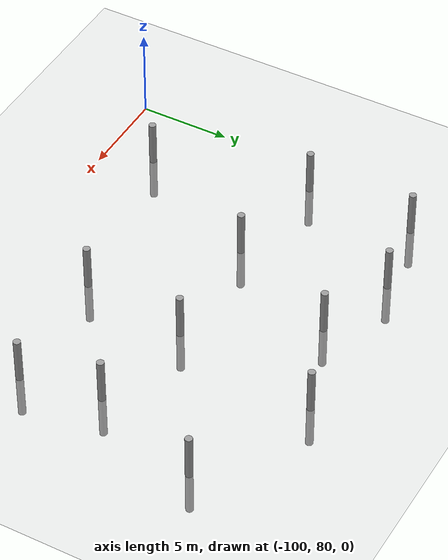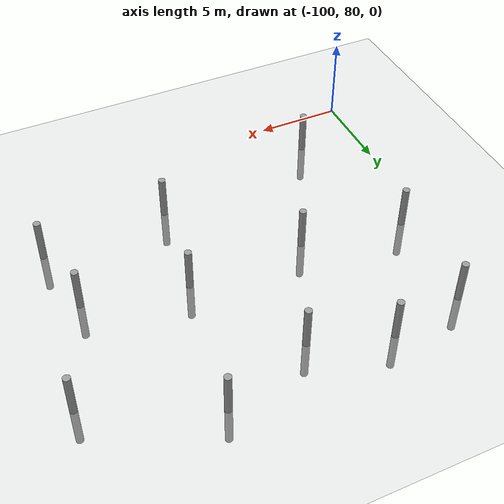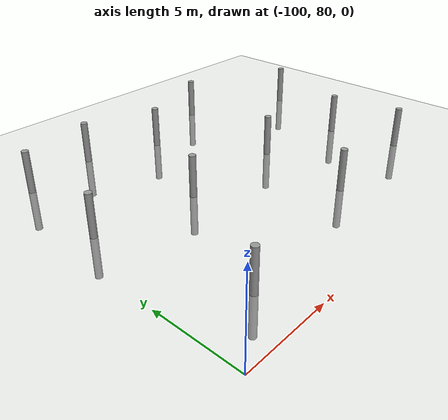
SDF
<sdf version="1.6">
 <world name="default">
  <model name="ground_plane">
   <static>1</static>
   <link name="link">
    <collision name="collision">
     <geometry><plane><normal>0 0 1</normal><size>100 100</size></plane></geometry>
     <surface><friction><ode><mu>100</mu><mu2>50</mu2></ode></friction></surface>
    </collision>
    <visual name="visual">
     <cast_shadows>0</cast_shadows>
     <geometry><plane><normal>0 0 1</normal><size>100 100</size></plane></geometry>
     <material>
      <script><uri>file://media/materials/scripts/gazebo.material</uri><name>Gazebo/Grey</name></script>
     </material>
    </visual>
   </link>
  </model>
  <model name="empty_pillars">
   <model name="empty_pillar_clone_16">
    <link name="link">
     <inertial>
      <mass>1</mass>
      <inertia><ixx>0.145833</ixx><ixy>0</ixy><ixz>0</ixz><iyy>0.145833</iyy><iyz>0</iyz><izz>0.125</izz></inertia>
     </inertial>
     <visual name="visual">
      <geometry><cylinder><radius>0.2</radius><length>5</length></cylinder></geometry>
      <material>
       <script><name>Gazebo/Grey</name><uri>file://media/materials/scripts/gazebo.material</uri></script>
       <shader type="vertex"><normal_map>__default__</normal_map></shader>
       <ambient>0.3 0.3 0.3 1</ambient>
       <diffuse>0.7 0.7 0.7 1</diffuse>
       <specular>0.01 0.01 0.01 1</specular>
       <emissive>0 0 0 1</emissive>
      </material>
     </visual>
     <collision name="collision">
      <geometry><cylinder><radius>0.05</radius><length>5</length></cylinder></geometry>
      <surface>
       <friction>
        <ode><mu>1</mu><mu2>1</mu2><fdir1>0 0 0</fdir1><slip1>0</slip1><slip2>0</slip2></ode>
        <torsional>
         <coefficient>1</coefficient>
         <patch_radius>0</patch_radius>
         <surface_radius>0</surface_radius>
         <use_patch_radius>1</use_patch_radius>
         <ode><slip>0</slip></ode>
        </torsional>
       </friction>
       <bounce><restitution_coefficient>0</restitution_coefficient><threshold>1e+06</threshold></bounce>
       <contact>
        <collide_without_contact>0</collide_without_contact>
        <collide_without_contact_bitmask>1</collide_without_contact_bitmask>
        <collide_bitmask>1</collide_bitmask>
        <ode>
         <soft_cfm>0</soft_cfm>
         <soft_erp>0.2</soft_erp>
         <kp>1e+13</kp>
         <kd>1</kd>
         <max_vel>0.01</max_vel>
         <min_depth>0</min_depth>
        </ode>
        <bullet>
         <split_impulse>1</split_impulse>
         <split_impulse_penetration_threshold>-0.01</split_impulse_penetration_threshold>
         <soft_cfm>0</soft_cfm>
         <soft_erp>0.2</soft_erp>
         <kp>1e+13</kp>
         <kd>1</kd>
        </bullet>
       </contact>
      </surface>
     </collision>
    </link>
    <static>0</static>
    <pose>-9.20789 13.0504 0 0 -0 0</pose>
   </model>
   <model name="empty_pillar_clone_17">
    <link name="link">
     <inertial>
      <mass>1</mass>
      <inertia><ixx>0.145833</ixx><ixy>0</ixy><ixz>0</ixz><iyy>0.145833</iyy><iyz>0</iyz><izz>0.125</izz></inertia>
     </inertial>
     <visual name="visual">
      <geometry><cylinder><radius>0.2</radius><length>5</length></cylinder></geometry>
      <material>
       <script><name>Gazebo/Grey</name><uri>file://media/materials/scripts/gazebo.material</uri></script>
       <shader type="vertex"><normal_map>__default__</normal_map></shader>
       <ambient>0.3 0.3 0.3 1</ambient>
       <diffuse>0.7 0.7 0.7 1</diffuse>
       <specular>0.01 0.01 0.01 1</specular>
       <emissive>0 0 0 1</emissive>
      </material>
     </visual>
     <collision name="collision">
      <geometry><cylinder><radius>0.05</radius><length>5</length></cylinder></geometry>
      <surface>
       <friction>
        <ode><mu>1</mu><mu2>1</mu2><fdir1>0 0 0</fdir1><slip1>0</slip1><slip2>0</slip2></ode>
        <torsional>
         <coefficient>1</coefficient>
         <patch_radius>0</patch_radius>
         <surface_radius>0</surface_radius>
         <use_patch_radius>1</use_patch_radius>
         <ode><slip>0</slip></ode>
        </torsional>
       </friction>
       <bounce><restitution_coefficient>0</restitution_coefficient><threshold>1e+06</threshold></bounce>
       <contact>
        <collide_without_contact>0</collide_without_contact>
        <collide_without_contact_bitmask>1</collide_without_contact_bitmask>
        <collide_bitmask>1</collide_bitmask>
        <ode>
         <soft_cfm>0</soft_cfm>
         <soft_erp>0.2</soft_erp>
         <kp>1e+13</kp>
         <kd>1</kd>
         <max_vel>0.01</max_vel>
         <min_depth>0</min_depth>
        </ode>
        <bullet>
         <split_impulse>1</split_impulse>
         <split_impulse_penetration_threshold>-0.01</split_impulse_penetration_threshold>
         <soft_cfm>0</soft_cfm>
         <soft_erp>0.2</soft_erp>
         <kp>1e+13</kp>
         <kd>1</kd>
        </bullet>
       </contact>
      </surface>
     </collision>
    </link>
    <static>0</static>
    <pose>-16.0449 12.755 0 0 -0 0</pose>
   </model>
   <model name="empty_pillar_clone_18">
    <link name="link">
     <inertial>
      <mass>1</mass>
      <inertia><ixx>0.145833</ixx><ixy>0</ixy><ixz>0</ixz><iyy>0.145833</iyy><iyz>0</iyz><izz>0.125</izz></inertia>
     </inertial>
     <visual name="visual">
      <geometry><cylinder><radius>0.2</radius><length>5</length></cylinder></geometry>
      <material>
       <script><name>Gazebo/Grey</name><uri>file://media/materials/scripts/gazebo.material</uri></script>
       <shader type="vertex"><normal_map>__default__</normal_map></shader>
       <ambient>0.3 0.3 0.3 1</ambient>
       <diffuse>0.7 0.7 0.7 1</diffuse>
       <specular>0.01 0.01 0.01 1</specular>
       <emissive>0 0 0 1</emissive>
      </material>
     </visual>
     <collision name="collision">
      <geometry><cylinder><radius>0.05</radius><length>5</length></cylinder></geometry>
      <surface>
       <friction>
        <ode><mu>1</mu><mu2>1</mu2><fdir1>0 0 0</fdir1><slip1>0</slip1><slip2>0</slip2></ode>
        <torsional>
         <coefficient>1</coefficient>
         <patch_radius>0</patch_radius>
         <surface_radius>0</surface_radius>
         <use_patch_radius>1</use_patch_radius>
         <ode><slip>0</slip></ode>
        </torsional>
       </friction>
       <bounce><restitution_coefficient>0</restitution_coefficient><threshold>1e+06</threshold></bounce>
       <contact>
        <collide_without_contact>0</collide_without_contact>
        <collide_without_contact_bitmask>1</collide_without_contact_bitmask>
        <collide_bitmask>1</collide_bitmask>
        <ode>
         <soft_cfm>0</soft_cfm>
         <soft_erp>0.2</soft_erp>
         <kp>1e+13</kp>
         <kd>1</kd>
         <max_vel>0.01</max_vel>
         <min_depth>0</min_depth>
        </ode>
        <bullet>
         <split_impulse>1</split_impulse>
         <split_impulse_penetration_threshold>-0.01</split_impulse_penetration_threshold>
         <soft_cfm>0</soft_cfm>
         <soft_erp>0.2</soft_erp>
         <kp>1e+13</kp>
         <kd>1</kd>
        </bullet>
       </contact>
      </surface>
     </collision>
    </link>
    <static>0</static>
    <pose>-20.0146 5.15966 0 0 -0 0</pose>
   </model>
   <model name="empty_pillar_clone_19">
    <link name="link">
     <inertial>
      <mass>1</mass>
      <inertia><ixx>0.145833</ixx><ixy>0</ixy><ixz>0</ixz><iyy>0.145833</iyy><iyz>0</iyz><izz>0.125</izz></inertia>
     </inertial>
     <visual name="visual">
      <geometry><cylinder><radius>0.2</radius><length>5</length></cylinder></geometry>
      <material>
       <script><name>Gazebo/Grey</name><uri>file://media/materials/scripts/gazebo.material</uri></script>
       <shader type="vertex"><normal_map>__default__</normal_map></shader>
       <ambient>0.3 0.3 0.3 1</ambient>
       <diffuse>0.7 0.7 0.7 1</diffuse>
       <specular>0.01 0.01 0.01 1</specular>
       <emissive>0 0 0 1</emissive>
      </material>
     </visual>
     <collision name="collision">
      <geometry><cylinder><radius>0.05</radius><length>5</length></cylinder></geometry>
      <surface>
       <friction>
        <ode><mu>1</mu><mu2>1</mu2><fdir1>0 0 0</fdir1><slip1>0</slip1><slip2>0</slip2></ode>
        <torsional>
         <coefficient>1</coefficient>
         <patch_radius>0</patch_radius>
         <surface_radius>0</surface_radius>
         <use_patch_radius>1</use_patch_radius>
         <ode><slip>0</slip></ode>
        </torsional>
       </friction>
       <bounce><restitution_coefficient>0</restitution_coefficient><threshold>1e+06</threshold></bounce>
       <contact>
        <collide_without_contact>0</collide_without_contact>
        <collide_without_contact_bitmask>1</collide_without_contact_bitmask>
        <collide_bitmask>1</collide_bitmask>
        <ode>
         <soft_cfm>0</soft_cfm>
         <soft_erp>0.2</soft_erp>
         <kp>1e+13</kp>
         <kd>1</kd>
         <max_vel>0.01</max_vel>
         <min_depth>0</min_depth>
        </ode>
        <bullet>
         <split_impulse>1</split_impulse>
         <split_impulse_penetration_threshold>-0.01</split_impulse_penetration_threshold>
         <soft_cfm>0</soft_cfm>
         <soft_erp>0.2</soft_erp>
         <kp>1e+13</kp>
         <kd>1</kd>
        </bullet>
       </contact>
      </surface>
     </collision>
    </link>
    <static>0</static>
    <pose>-10.0146 7.15966 0 0 -0 0</pose>
   </model>
   <model name="empty_pillar_clone_20">
    <link name="link">
     <inertial>
      <mass>1</mass>
      <inertia><ixx>0.145833</ixx><ixy>0</ixy><ixz>0</ixz><iyy>0.145833</iyy><iyz>0</iyz><izz>0.125</izz></inertia>
     </inertial>
     <visual name="visual">
      <geometry><cylinder><radius>0.2</radius><length>5</length></cylinder></geometry>
      <material>
       <script><name>Gazebo/Grey</name><uri>file://media/materials/scripts/gazebo.material</uri></script>
       <shader type="vertex"><normal_map>__default__</normal_map></shader>
       <ambient>0.3 0.3 0.3 1</ambient>
       <diffuse>0.7 0.7 0.7 1</diffuse>
       <specular>0.01 0.01 0.01 1</specular>
       <emissive>0 0 0 1</emissive>
      </material>
     </visual>
     <collision name="collision">
      <geometry><cylinder><radius>0.05</radius><length>5</length></cylinder></geometry>
      <surface>
       <friction>
        <ode><mu>1</mu><mu2>1</mu2><fdir1>0 0 0</fdir1><slip1>0</slip1><slip2>0</slip2></ode>
        <torsional>
         <coefficient>1</coefficient>
         <patch_radius>0</patch_radius>
         <surface_radius>0</surface_radius>
         <use_patch_radius>1</use_patch_radius>
         <ode><slip>0</slip></ode>
        </torsional>
       </friction>
       <bounce><restitution_coefficient>0</restitution_coefficient><threshold>1e+06</threshold></bounce>
       <contact>
        <collide_without_contact>0</collide_without_contact>
        <collide_without_contact_bitmask>1</collide_without_contact_bitmask>
        <collide_bitmask>1</collide_bitmask>
        <ode>
         <soft_cfm>0</soft_cfm>
         <soft_erp>0.2</soft_erp>
         <kp>1e+13</kp>
         <kd>1</kd>
         <max_vel>0.01</max_vel>
         <min_depth>0</min_depth>
        </ode>
        <bullet>
         <split_impulse>1</split_impulse>
         <split_impulse_penetration_threshold>-0.01</split_impulse_penetration_threshold>
         <soft_cfm>0</soft_cfm>
         <soft_erp>0.2</soft_erp>
         <kp>1e+13</kp>
         <kd>1</kd>
        </bullet>
       </contact>
      </surface>
     </collision>
    </link>
    <static>0</static>
    <pose>-13.0146 19.1597 0 0 -0 0</pose>
   </model>
   <model name="empty_pillar_clone_21">
    <link name="link">
     <inertial>
      <mass>1</mass>
      <inertia><ixx>0.145833</ixx><ixy>0</ixy><ixz>0</ixz><iyy>0.145833</iyy><iyz>0</iyz><izz>0.125</izz></inertia>
     </inertial>
     <visual name="visual">
      <geometry><cylinder><radius>0.2</radius><length>5</length></cylinder></geometry>
      <material>
       <script><name>Gazebo/Grey</name><uri>file://media/materials/scripts/gazebo.material</uri></script>
       <shader type="vertex"><normal_map>__default__</normal_map></shader>
       <ambient>0.3 0.3 0.3 1</ambient>
       <diffuse>0.7 0.7 0.7 1</diffuse>
       <specular>0.01 0.01 0.01 1</specular>
       <emissive>0 0 0 1</emissive>
      </material>
     </visual>
     <collision name="collision">
      <geometry><cylinder><radius>0.05</radius><length>5</length></cylinder></geometry>
      <surface>
       <friction>
        <ode><mu>1</mu><mu2>1</mu2><fdir1>0 0 0</fdir1><slip1>0</slip1><slip2>0</slip2></ode>
        <torsional>
         <coefficient>1</coefficient>
         <patch_radius>0</patch_radius>
         <surface_radius>0</surface_radius>
         <use_patch_radius>1</use_patch_radius>
         <ode><slip>0</slip></ode>
        </torsional>
       </friction>
       <bounce><restitution_coefficient>0</restitution_coefficient><threshold>1e+06</threshold></bounce>
       <contact>
        <collide_without_contact>0</collide_without_contact>
        <collide_without_contact_bitmask>1</collide_without_contact_bitmask>
        <collide_bitmask>1</collide_bitmask>
        <ode>
         <soft_cfm>0</soft_cfm>
         <soft_erp>0.2</soft_erp>
         <kp>1e+13</kp>
         <kd>1</kd>
         <max_vel>0.01</max_vel>
         <min_depth>0</min_depth>
        </ode>
        <bullet>
         <split_impulse>1</split_impulse>
         <split_impulse_penetration_threshold>-0.01</split_impulse_penetration_threshold>
         <soft_cfm>0</soft_cfm>
         <soft_erp>0.2</soft_erp>
         <kp>1e+13</kp>
         <kd>1</kd>
        </bullet>
       </contact>
      </surface>
     </collision>
    </link>
    <static>0</static>
    <pose>-21.7273 19.7662 0 0 -0 0</pose>
   </model>
   <model name="empty_pillar_clone_22">
    <link name="link">
     <inertial>
      <mass>1</mass>
      <inertia><ixx>0.145833</ixx><ixy>0</ixy><ixz>0</ixz><iyy>0.145833</iyy><iyz>0</iyz><izz>0.125</izz></inertia>
     </inertial>
     <visual name="visual">
      <geometry><cylinder><radius>0.2</radius><length>5</length></cylinder></geometry>
      <material>
       <script><name>Gazebo/Grey</name><uri>file://media/materials/scripts/gazebo.material</uri></script>
       <shader type="vertex"><normal_map>__default__</normal_map></shader>
       <ambient>0.3 0.3 0.3 1</ambient>
       <diffuse>0.7 0.7 0.7 1</diffuse>
       <specular>0.01 0.01 0.01 1</specular>
       <emissive>0 0 0 1</emissive>
      </material>
     </visual>
     <collision name="collision">
      <geometry><cylinder><radius>0.05</radius><length>5</length></cylinder></geometry>
      <surface>
       <friction>
        <ode><mu>1</mu><mu2>1</mu2><fdir1>0 0 0</fdir1><slip1>0</slip1><slip2>0</slip2></ode>
        <torsional>
         <coefficient>1</coefficient>
         <patch_radius>0</patch_radius>
         <surface_radius>0</surface_radius>
         <use_patch_radius>1</use_patch_radius>
         <ode><slip>0</slip></ode>
        </torsional>
       </friction>
       <bounce><restitution_coefficient>0</restitution_coefficient><threshold>1e+06</threshold></bounce>
       <contact>
        <collide_without_contact>0</collide_without_contact>
        <collide_without_contact_bitmask>1</collide_without_contact_bitmask>
        <collide_bitmask>1</collide_bitmask>
        <ode>
         <soft_cfm>0</soft_cfm>
         <soft_erp>0.2</soft_erp>
         <kp>1e+13</kp>
         <kd>1</kd>
         <max_vel>0.01</max_vel>
         <min_depth>0</min_depth>
        </ode>
        <bullet>
         <split_impulse>1</split_impulse>
         <split_impulse_penetration_threshold>-0.01</split_impulse_penetration_threshold>
         <soft_cfm>0</soft_cfm>
         <soft_erp>0.2</soft_erp>
         <kp>1e+13</kp>
         <kd>1</kd>
        </bullet>
       </contact>
      </surface>
     </collision>
    </link>
    <static>0</static>
    <pose>-17.3667 20.5782 0 0 -0 0</pose>
   </model>
   <model name="empty_pillar_clone_23">
    <link name="link">
     <inertial>
      <mass>1</mass>
      <inertia><ixx>0.145833</ixx><ixy>0</ixy><ixz>0</ixz><iyy>0.145833</iyy><iyz>0</iyz><izz>0.125</izz></inertia>
     </inertial>
     <visual name="visual">
      <geometry><cylinder><radius>0.2</radius><length>5</length></cylinder></geometry>
      <material>
       <script><name>Gazebo/Grey</name><uri>file://media/materials/scripts/gazebo.material</uri></script>
       <shader type="vertex"><normal_map>__default__</normal_map></shader>
       <ambient>0.3 0.3 0.3 1</ambient>
       <diffuse>0.7 0.7 0.7 1</diffuse>
       <specular>0.01 0.01 0.01 1</specular>
       <emissive>0 0 0 1</emissive>
      </material>
     </visual>
     <collision name="collision">
      <geometry><cylinder><radius>0.05</radius><length>5</length></cylinder></geometry>
      <surface>
       <friction>
        <ode><mu>1</mu><mu2>1</mu2><fdir1>0 0 0</fdir1><slip1>0</slip1><slip2>0</slip2></ode>
        <torsional>
         <coefficient>1</coefficient>
         <patch_radius>0</patch_radius>
         <surface_radius>0</surface_radius>
         <use_patch_radius>1</use_patch_radius>
         <ode><slip>0</slip></ode>
        </torsional>
       </friction>
       <bounce><restitution_coefficient>0</restitution_coefficient><threshold>1e+06</threshold></bounce>
       <contact>
        <collide_without_contact>0</collide_without_contact>
        <collide_without_contact_bitmask>1</collide_without_contact_bitmask>
        <collide_bitmask>1</collide_bitmask>
        <ode>
         <soft_cfm>0</soft_cfm>
         <soft_erp>0.2</soft_erp>
         <kp>1e+13</kp>
         <kd>1</kd>
         <max_vel>0.01</max_vel>
         <min_depth>0</min_depth>
        </ode>
        <bullet>
         <split_impulse>1</split_impulse>
         <split_impulse_penetration_threshold>-0.01</split_impulse_penetration_threshold>
         <soft_cfm>0</soft_cfm>
         <soft_erp>0.2</soft_erp>
         <kp>1e+13</kp>
         <kd>1</kd>
        </bullet>
       </contact>
      </surface>
     </collision>
    </link>
    <static>0</static>
    <pose>-1.21984 18.1273 0 0 -0 0</pose>
   </model>
   <model name="empty_pillar_clone_24">
    <link name="link">
     <inertial>
      <mass>1</mass>
      <inertia><ixx>0.145833</ixx><ixy>0</ixy><ixz>0</ixz><iyy>0.145833</iyy><iyz>0</iyz><izz>0.125</izz></inertia>
     </inertial>
     <visual name="visual">
      <geometry><cylinder><radius>0.2</radius><length>5</length></cylinder></geometry>
      <material>
       <script><name>Gazebo/Grey</name><uri>file://media/materials/scripts/gazebo.material</uri></script>
       <shader type="vertex"><normal_map>__default__</normal_map></shader>
       <ambient>0.3 0.3 0.3 1</ambient>
       <diffuse>0.7 0.7 0.7 1</diffuse>
       <specular>0.01 0.01 0.01 1</specular>
       <emissive>0 0 0 1</emissive>
      </material>
     </visual>
     <collision name="collision">
      <geometry><cylinder><radius>0.05</radius><length>5</length></cylinder></geometry>
      <surface>
       <friction>
        <ode><mu>1</mu><mu2>1</mu2><fdir1>0 0 0</fdir1><slip1>0</slip1><slip2>0</slip2></ode>
        <torsional>
         <coefficient>1</coefficient>
         <patch_radius>0</patch_radius>
         <surface_radius>0</surface_radius>
         <use_patch_radius>1</use_patch_radius>
         <ode><slip>0</slip></ode>
        </torsional>
       </friction>
       <bounce><restitution_coefficient>0</restitution_coefficient><threshold>1e+06</threshold></bounce>
       <contact>
        <collide_without_contact>0</collide_without_contact>
        <collide_without_contact_bitmask>1</collide_without_contact_bitmask>
        <collide_bitmask>1</collide_bitmask>
        <ode>
         <soft_cfm>0</soft_cfm>
         <soft_erp>0.2</soft_erp>
         <kp>1e+13</kp>
         <kd>1</kd>
         <max_vel>0.01</max_vel>
         <min_depth>0</min_depth>
        </ode>
        <bullet>
         <split_impulse>1</split_impulse>
         <split_impulse_penetration_threshold>-0.01</split_impulse_penetration_threshold>
         <soft_cfm>0</soft_cfm>
         <soft_erp>0.2</soft_erp>
         <kp>1e+13</kp>
         <kd>1</kd>
        </bullet>
       </contact>
      </surface>
     </collision>
    </link>
    <static>0</static>
    <pose>-3.46957 11.9413 0 0 -0 0</pose>
   </model>
   <model name="empty_pillar_clone_25">
    <link name="link">
     <inertial>
      <mass>1</mass>
      <inertia><ixx>0.145833</ixx><ixy>0</ixy><ixz>0</ixz><iyy>0.145833</iyy><iyz>0</iyz><izz>0.125</izz></inertia>
     </inertial>
     <visual name="visual">
      <geometry><cylinder><radius>0.2</radius><length>5</length></cylinder></geometry>
      <material>
       <script><name>Gazebo/Grey</name><uri>file://media/materials/scripts/gazebo.material</uri></script>
       <shader type="vertex"><normal_map>__default__</normal_map></shader>
       <ambient>0.3 0.3 0.3 1</ambient>
       <diffuse>0.7 0.7 0.7 1</diffuse>
       <specular>0.01 0.01 0.01 1</specular>
       <emissive>0 0 0 1</emissive>
      </material>
     </visual>
     <collision name="collision">
      <geometry><cylinder><radius>0.05</radius><length>5</length></cylinder></geometry>
      <surface>
       <friction>
        <ode><mu>1</mu><mu2>1</mu2><fdir1>0 0 0</fdir1><slip1>0</slip1><slip2>0</slip2></ode>
        <torsional>
         <coefficient>1</coefficient>
         <patch_radius>0</patch_radius>
         <surface_radius>0</surface_radius>
         <use_patch_radius>1</use_patch_radius>
         <ode><slip>0</slip></ode>
        </torsional>
       </friction>
       <bounce><restitution_coefficient>0</restitution_coefficient><threshold>1e+06</threshold></bounce>
       <contact>
        <collide_without_contact>0</collide_without_contact>
        <collide_without_contact_bitmask>1</collide_without_contact_bitmask>
        <collide_bitmask>1</collide_bitmask>
        <ode>
         <soft_cfm>0</soft_cfm>
         <soft_erp>0.2</soft_erp>
         <kp>1e+13</kp>
         <kd>1</kd>
         <max_vel>0.01</max_vel>
         <min_depth>0</min_depth>
        </ode>
        <bullet>
         <split_impulse>1</split_impulse>
         <split_impulse_penetration_threshold>-0.01</split_impulse_penetration_threshold>
         <soft_cfm>0</soft_cfm>
         <soft_erp>0.2</soft_erp>
         <kp>1e+13</kp>
         <kd>1</kd>
        </bullet>
       </contact>
      </surface>
     </collision>
    </link>
    <static>0</static>
    <pose>-7.86239 21.1314 0 0 -0 0</pose>
   </model>
   <model name="empty_pillar_clone_50">
    <link name="link">
     <inertial>
      <mass>1</mass>
      <inertia><ixx>0.145833</ixx><ixy>0</ixy><ixz>0</ixz><iyy>0.145833</iyy><iyz>0</iyz><izz>0.125</izz></inertia>
     </inertial>
     <visual name="visual">
      <geometry><cylinder><radius>0.2</radius><length>5</length></cylinder></geometry>
      <material>
       <script><name>Gazebo/Grey</name><uri>file://media/materials/scripts/gazebo.material</uri></script>
       <shader type="vertex"><normal_map>__default__</normal_map></shader>
       <ambient>0.3 0.3 0.3 1</ambient>
       <diffuse>0.7 0.7 0.7 1</diffuse>
       <specular>0.01 0.01 0.01 1</specular>
       <emissive>0 0 0 1</emissive>
      </material>
     </visual>
     <collision name="collision">
      <geometry><cylinder><radius>0.05</radius><length>5</length></cylinder></geometry>
      <surface>
       <friction>
        <ode><mu>1</mu><mu2>1</mu2><fdir1>0 0 0</fdir1><slip1>0</slip1><slip2>0</slip2></ode>
        <torsional>
         <coefficient>1</coefficient>
         <patch_radius>0</patch_radius>
         <surface_radius>0</surface_radius>
         <use_patch_radius>1</use_patch_radius>
         <ode><slip>0</slip></ode>
        </torsional>
       </friction>
       <bounce><restitution_coefficient>0</restitution_coefficient><threshold>1e+06</threshold></bounce>
       <contact>
        <collide_without_contact>0</collide_without_contact>
        <collide_without_contact_bitmask>1</collide_without_contact_bitmask>
        <collide_bitmask>1</collide_bitmask>
        <ode>
         <soft_cfm>0</soft_cfm>
         <soft_erp>0.2</soft_erp>
         <kp>1e+13</kp>
         <kd>1</kd>
         <max_vel>0.01</max_vel>
         <min_depth>0</min_depth>
        </ode>
        <bullet>
         <split_impulse>1</split_impulse>
         <split_impulse_penetration_threshold>-0.01</split_impulse_penetration_threshold>
         <soft_cfm>0</soft_cfm>
         <soft_erp>0.2</soft_erp>
         <kp>1e+13</kp>
         <kd>1</kd>
        </bullet>
       </contact>
      </surface>
     </collision>
    </link>
    <static>0</static>
    <pose>-22.0498 13.6251 0 0 -0 0</pose>
   </model>
   <model name="empty_pillar_clone_56">
    <link name="link">
     <inertial>
      <mass>1</mass>
      <inertia><ixx>0.145833</ixx><ixy>0</ixy><ixz>0</ixz><iyy>0.145833</iyy><iyz>0</iyz><izz>0.125</izz></inertia>
     </inertial>
     <visual name="visual">
      <geometry><cylinder><radius>0.2</radius><length>5</length></cylinder></geometry>
      <material>
       <script><name>Gazebo/Grey</name><uri>file://media/materials/scripts/gazebo.material</uri></script>
       <shader type="vertex"><normal_map>__default__</normal_map></shader>
       <ambient>0.3 0.3 0.3 1</ambient>
       <diffuse>0.7 0.7 0.7 1</diffuse>
       <specular>0.01 0.01 0.01 1</specular>
       <emissive>0 0 0 1</emissive>
      </material>
     </visual>
     <collision name="collision">
      <geometry><cylinder><radius>0.05</radius><length>5</length></cylinder></geometry>
      <surface>
       <friction>
        <ode><mu>1</mu><mu2>1</mu2><fdir1>0 0 0</fdir1><slip1>0</slip1><slip2>0</slip2></ode>
        <torsional>
         <coefficient>1</coefficient>
         <patch_radius>0</patch_radius>
         <surface_radius>0</surface_radius>
         <use_patch_radius>1</use_patch_radius>
         <ode><slip>0</slip></ode>
        </torsional>
       </friction>
       <bounce><restitution_coefficient>0</restitution_coefficient><threshold>1e+06</threshold></bounce>
       <contact>
        <collide_without_contact>0</collide_without_contact>
        <collide_without_contact_bitmask>1</collide_without_contact_bitmask>
        <collide_bitmask>1</collide_bitmask>
        <ode>
         <soft_cfm>0</soft_cfm>
         <soft_erp>0.2</soft_erp>
         <kp>1e+13</kp>
         <kd>1</kd>
         <max_vel>0.01</max_vel>
         <min_depth>0</min_depth>
        </ode>
        <bullet>
         <split_impulse>1</split_impulse>
         <split_impulse_penetration_threshold>-0.01</split_impulse_penetration_threshold>
         <soft_cfm>0</soft_cfm>
         <soft_erp>0.2</soft_erp>
         <kp>1e+13</kp>
         <kd>1</kd>
        </bullet>
       </contact>
      </surface>
     </collision>
    </link>
    <static>0</static>
    <pose>-2.69782 7.67053 0 0 -0 0</pose>
   </model>
   <static>0</static>
   <pose>-76.4247 77.3975 0 0 -0 0</pose>
  </model>
 </world>
</sdf>
